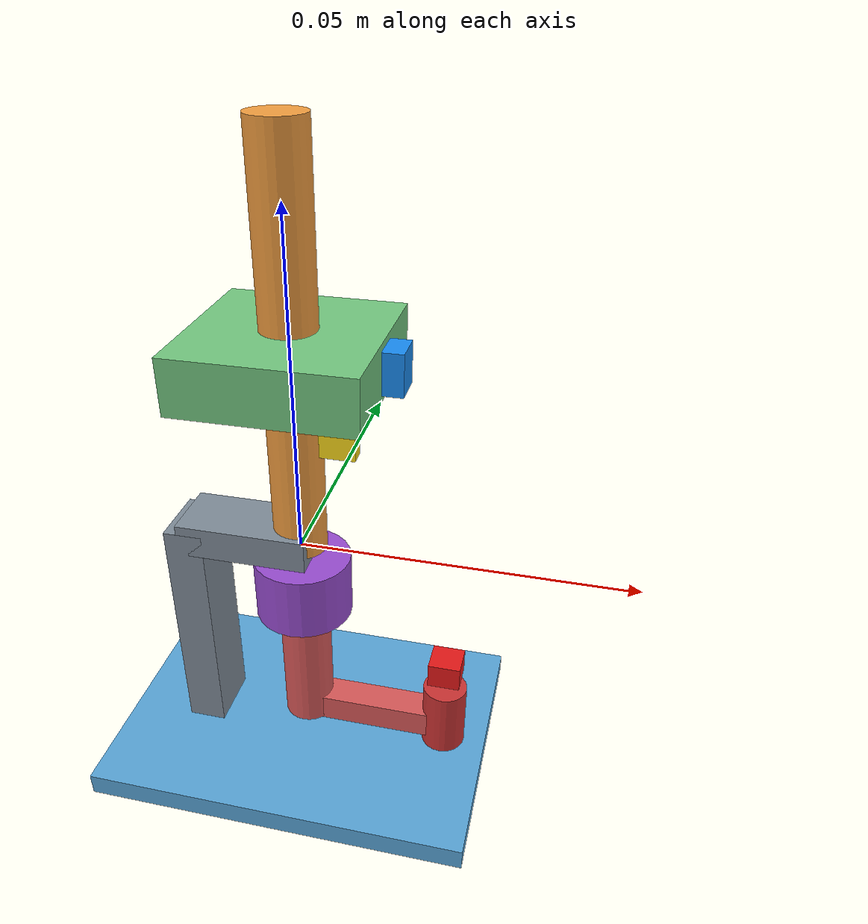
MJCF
<?xml version="1.0" ?>
<mujoco model="t2_screw_lift">
  <compiler angle="radian" autolimits="true"/>
  <option timestep="0.0001" integrator="implicitfast" cone="elliptic" impratio="10" gravity="0 0 0"/>
  <visual>
    <headlight ambient="0.5 0.5 0.5" diffuse="0.6 0.6 0.6" specular="0.2 0.2 0.2"/>
    <global offwidth="1280" offheight="960"/>
  </visual>
  <default>
    <geom density="0" contype="0" conaffinity="0" group="2"/>
  </default>
  <asset>
    <material name="base" rgba="0.35 0.65 0.85 1"/>
    <material name="crank" rgba="0.85 0.35 0.35 1"/>
    <material name="screw" rgba="0.95 0.62 0.25 1"/>
    <material name="nut" rgba="0.45 0.78 0.5 1"/>
    <material name="coupling" rgba="0.60 0.30 0.82 1"/>
    <material name="boss" rgba="0.50 0.55 0.60 1"/>
    <material name="knob" rgba="0.80 0.20 0.20 1"/>
    <material name="mk_crank" rgba="0.90 0.10 0.10 1"/>
    <material name="mk_screw" rgba="0.98 0.85 0.10 1"/>
    <material name="mk_nut" rgba="0.10 0.55 0.95 1"/>
  </asset>
  <worldbody>
    <light pos="0.1 -0.2 0.4" dir="-0.2 0.3 -1" directional="true" diffuse="0.5 0.5 0.5"/>
    <camera name="side" pos="0.17 -0.22 0.045" xyaxes="0.78 0.62 0 -0.14 0.18 0.98"/>
    <geom name="base_plate" type="box" pos="0 0 -0.037" size="0.030 0.022 0.0018" material="base"/>
    <geom name="frame_upright" type="box" pos="-0.017 0 -0.018" size="0.003 0.005 0.020" material="boss"/>
    <geom name="bearing_bracket" type="box" pos="-0.008 0 0.001" size="0.010 0.005 0.0025" material="boss"/>
    <body name="crank" pos="0 0 0">
      <joint name="crank_hinge" type="hinge" axis="0 0 1" pos="0 0 0" damping="1e-05" armature="1e-05"/>
      <geom name="crank_shaft" type="cylinder" fromto="0 0 -0.033 0 0 -0.011" size="0.004" material="crank" mass="0.01"/>
      <geom name="crank_arm" type="box" pos="0.012 0 -0.031" size="0.012 0.0025 0.0022" material="crank" mass="0.002"/>
      <geom name="crank_knob" type="cylinder" fromto="0.023 0 -0.036 0.023 0 -0.024" size="0.0035" material="knob" mass="0.002"/>
      <geom name="mk_crank" type="box" pos="0.023000000 0.000000000 -0.020000000" size="0.002500000 0.002500000 0.002000000" material="mk_crank"/>
    </body>
    <body name="screw" pos="0 0 0">
      <joint name="screw_hinge" type="hinge" axis="0 0 1" pos="0 0 0" damping="1e-05" armature="1e-05" frictionloss="0.005150250"/>
      <geom name="coupling_hub" type="cylinder" fromto="0 0 -0.012 0 0 -0.002" size="0.0075" material="coupling" mass="0.004"/>
      <geom name="screw_rod" type="cylinder" fromto="0 0 0 0 0 0.060000" size="0.004" material="screw" mass="0.01"/>
      <geom name="mk_screw" type="box" pos="0.006000000 0.000000000 0.020000000" size="0.003000000 0.001200000 0.004000000" material="mk_screw"/>
    </body>
    <body name="nut" pos="0 0 0">
      <joint name="nut_slide" type="slide" axis="0 0 1" pos="0 0 0" damping="1e-05"/>
      <geom name="platform" type="box" pos="0 0 0.030000" size="0.013 0.013 0.004" material="nut" mass="0.02"/>
      <geom name="mk_nut" type="box" pos="0.014000000 0.000000000 0.030000000" size="0.002000000 0.002500000 0.003000000" material="mk_nut"/>
    </body>
  </worldbody>
  <equality>
    <joint name="couple_cs" joint1="screw_hinge" joint2="crank_hinge" polycoef="0 1.0 0 0 0" solref="-1e8 -1e4" solimp="0.9999 0.99999 1e-6 0.5 2"/>
    <joint name="couple_sn" joint1="nut_slide" joint2="screw_hinge" polycoef="0 0.000318310 0 0 0" solref="-1e8 -1e4" solimp="0.9999 0.99999 1e-6 0.5 2"/>
  </equality>
  <actuator>
    <velocity name="drive" joint="crank_hinge" kv="0.5"/>
  </actuator>
</mujoco>
